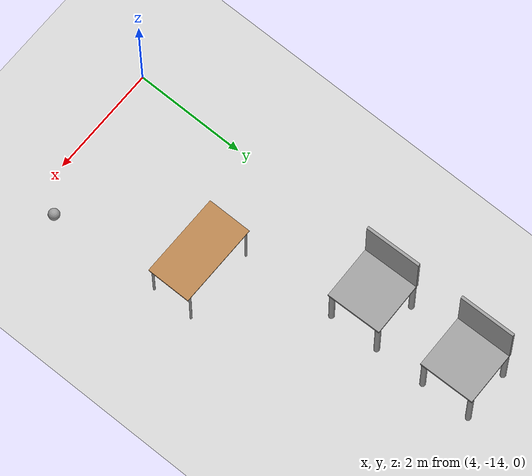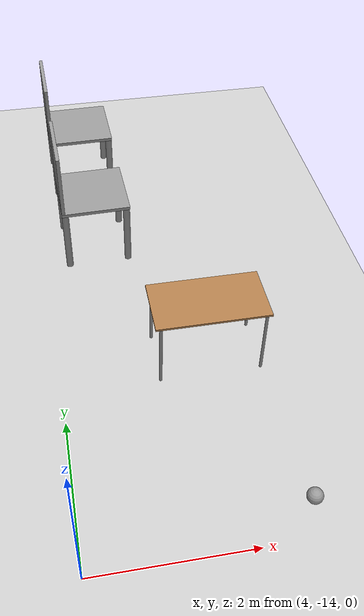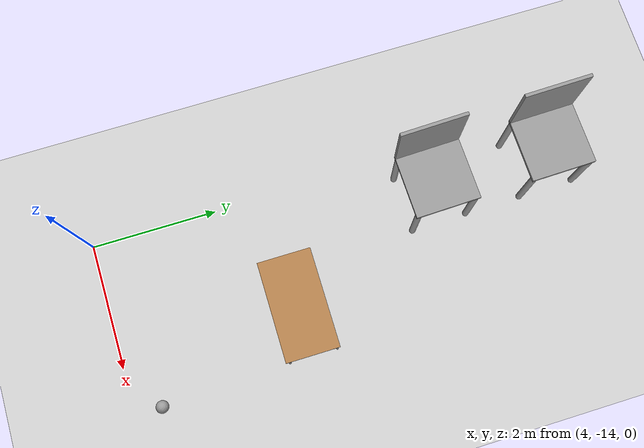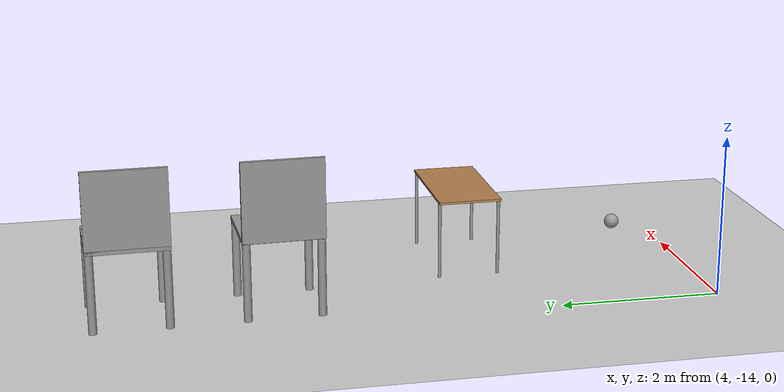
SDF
<sdf version="1.6">
 <world name="default">
  <model name="ground_plane">
   <static>1</static>
   <link name="link">
    <collision name="collision">
     <geometry><plane><normal>0 0 1</normal><size>100 100</size></plane></geometry>
     <surface>
      <contact><collide_bitmask>65535</collide_bitmask></contact>
      <friction><ode><mu>100</mu><mu2>50</mu2></ode></friction>
     </surface>
    </collision>
    <visual name="visual">
     <cast_shadows>0</cast_shadows>
     <geometry><plane><normal>0 0 1</normal><size>100 100</size></plane></geometry>
     <material>
      <script><uri>file://media/materials/scripts/gazebo.material</uri><name>Gazebo/Grey</name></script>
     </material>
    </visual>
   </link>
  </model>
  <model name="table_0">
   <static>1</static>
   <link name="link">
    <collision name="surface">
     <pose>0 0 1 0 -0 0</pose>
     <geometry><box><size>1.5 0.8 0.03</size></box></geometry>
     <surface><friction><ode><mu>0.6</mu><mu2>0.6</mu2></ode></friction></surface>
    </collision>
    <visual name="visual1">
     <pose>0 0 1 0 -0 0</pose>
     <geometry><box><size>1.5 0.8 0.03</size></box></geometry>
     <material>
      <script><uri>file://media/materials/scripts/gazebo.material</uri><name>Gazebo/Wood</name></script>
     </material>
    </visual>
    <collision name="front_left_leg">
     <pose>0.68 0.38 0.5 0 -0 0</pose>
     <geometry><cylinder><radius>0.02</radius><length>1</length></cylinder></geometry>
    </collision>
    <visual name="front_left_leg">
     <pose>0.68 0.38 0.5 0 -0 0</pose>
     <geometry><cylinder><radius>0.02</radius><length>1</length></cylinder></geometry>
     <material>
      <script><uri>file://media/materials/scripts/gazebo.material</uri><name>Gazebo/Grey</name></script>
     </material>
    </visual>
    <collision name="front_right_leg">
     <pose>0.68 -0.38 0.5 0 -0 0</pose>
     <geometry><cylinder><radius>0.02</radius><length>1</length></cylinder></geometry>
    </collision>
    <visual name="front_right_leg">
     <pose>0.68 -0.38 0.5 0 -0 0</pose>
     <geometry><cylinder><radius>0.02</radius><length>1</length></cylinder></geometry>
     <material>
      <script><uri>file://media/materials/scripts/gazebo.material</uri><name>Gazebo/Grey</name></script>
     </material>
    </visual>
    <collision name="back_right_leg">
     <pose>-0.68 -0.38 0.5 0 -0 0</pose>
     <geometry><cylinder><radius>0.02</radius><length>1</length></cylinder></geometry>
    </collision>
    <visual name="back_right_leg">
     <pose>-0.68 -0.38 0.5 0 -0 0</pose>
     <geometry><cylinder><radius>0.02</radius><length>1</length></cylinder></geometry>
     <material>
      <script><uri>file://media/materials/scripts/gazebo.material</uri><name>Gazebo/Grey</name></script>
     </material>
    </visual>
    <collision name="back_left_leg">
     <pose>-0.68 0.38 0.5 0 -0 0</pose>
     <geometry><cylinder><radius>0.02</radius><length>1</length></cylinder></geometry>
    </collision>
    <visual name="back_left_leg">
     <pose>-0.68 0.38 0.5 0 -0 0</pose>
     <geometry><cylinder><radius>0.02</radius><length>1</length></cylinder></geometry>
     <material>
      <script><uri>file://media/materials/scripts/gazebo.material</uri><name>Gazebo/Grey</name></script>
     </material>
    </visual>
   </link>
   <pose>5.97613 -11.1432 0 0 -0 0</pose>
  </model>
  <model name="my_Chair">
   <link name="link_0">
    <pose>-0.45 -0.370833 -0.245833 0 -0 0</pose>
    <inertial>
     <mass>1</mass>
     <inertia><ixx>0.145833</ixx><ixy>0</ixy><ixz>0</ixz><iyy>0.145833</iyy><iyz>0</iyz><izz>0.125</izz></inertia>
    </inertial>
    <visual name="visual">
     <geometry><cylinder><radius>0.05</radius><length>1</length></cylinder></geometry>
     <material>
      <lighting>1</lighting>
      <script><uri>file://media/materials/scripts/gazebo.material</uri><name>Gazebo/Grey</name></script>
      <ambient>0.3 0.3 0.3 1</ambient>
      <diffuse>0.7 0.7 0.7 1</diffuse>
      <specular>0.01 0.01 0.01 1</specular>
      <emissive>0 0 0 1</emissive>
      <shader type="vertex"><normal_map>__default__</normal_map></shader>
     </material>
    </visual>
    <collision name="collision">
     <geometry><cylinder><radius>0.05</radius><length>1</length></cylinder></geometry>
     <surface>
      <friction>
       <ode><mu>1</mu><mu2>1</mu2><fdir1>0 0 0</fdir1><slip1>0</slip1><slip2>0</slip2></ode>
       <torsional>
        <coefficient>1</coefficient>
        <patch_radius>0</patch_radius>
        <surface_radius>0</surface_radius>
        <use_patch_radius>1</use_patch_radius>
        <ode><slip>0</slip></ode>
       </torsional>
      </friction>
      <bounce><restitution_coefficient>0</restitution_coefficient><threshold>1e+06</threshold></bounce>
      <contact>
       <collide_without_contact>0</collide_without_contact>
       <collide_without_contact_bitmask>1</collide_without_contact_bitmask>
       <collide_bitmask>1</collide_bitmask>
       <ode>
        <soft_cfm>0</soft_cfm>
        <soft_erp>0.2</soft_erp>
        <kp>1e+13</kp>
        <kd>1</kd>
        <max_vel>0.01</max_vel>
        <min_depth>0</min_depth>
       </ode>
       <bullet>
        <split_impulse>1</split_impulse>
        <split_impulse_penetration_threshold>-0.01</split_impulse_penetration_threshold>
        <soft_cfm>0</soft_cfm>
        <soft_erp>0.2</soft_erp>
        <kp>1e+13</kp>
        <kd>1</kd>
       </bullet>
      </contact>
     </surface>
    </collision>
   </link>
   <link name="link_0_clone">
    <pose>0.45 -0.370833 -0.245833 0 -0 0</pose>
    <inertial>
     <mass>1</mass>
     <inertia><ixx>0.145833</ixx><ixy>0</ixy><ixz>0</ixz><iyy>0.145833</iyy><iyz>0</iyz><izz>0.125</izz></inertia>
    </inertial>
    <visual name="visual">
     <geometry><cylinder><radius>0.05</radius><length>1</length></cylinder></geometry>
     <material>
      <lighting>1</lighting>
      <script><uri>file://media/materials/scripts/gazebo.material</uri><name>Gazebo/Grey</name></script>
      <ambient>0.3 0.3 0.3 1</ambient>
      <diffuse>0.7 0.7 0.7 1</diffuse>
      <specular>0.01 0.01 0.01 1</specular>
      <emissive>0 0 0 1</emissive>
      <shader type="vertex"><normal_map>__default__</normal_map></shader>
     </material>
    </visual>
    <collision name="collision">
     <geometry><cylinder><radius>0.05</radius><length>1</length></cylinder></geometry>
     <surface>
      <friction>
       <ode><mu>1</mu><mu2>1</mu2><fdir1>0 0 0</fdir1><slip1>0</slip1><slip2>0</slip2></ode>
       <torsional>
        <coefficient>1</coefficient>
        <patch_radius>0</patch_radius>
        <surface_radius>0</surface_radius>
        <use_patch_radius>1</use_patch_radius>
        <ode><slip>0</slip></ode>
       </torsional>
      </friction>
      <bounce><restitution_coefficient>0</restitution_coefficient><threshold>1e+06</threshold></bounce>
      <contact>
       <collide_without_contact>0</collide_without_contact>
       <collide_without_contact_bitmask>1</collide_without_contact_bitmask>
       <collide_bitmask>1</collide_bitmask>
       <ode>
        <soft_cfm>0</soft_cfm>
        <soft_erp>0.2</soft_erp>
        <kp>1e+13</kp>
        <kd>1</kd>
        <max_vel>0.01</max_vel>
        <min_depth>0</min_depth>
       </ode>
       <bullet>
        <split_impulse>1</split_impulse>
        <split_impulse_penetration_threshold>-0.01</split_impulse_penetration_threshold>
        <soft_cfm>0</soft_cfm>
        <soft_erp>0.2</soft_erp>
        <kp>1e+13</kp>
        <kd>1</kd>
       </bullet>
      </contact>
     </surface>
    </collision>
   </link>
   <link name="link_0_clone_0">
    <pose>-0.45 0.529167 -0.245833 0 -0 0</pose>
    <inertial>
     <mass>1</mass>
     <inertia><ixx>0.145833</ixx><ixy>0</ixy><ixz>0</ixz><iyy>0.145833</iyy><iyz>0</iyz><izz>0.125</izz></inertia>
    </inertial>
    <visual name="visual">
     <geometry><cylinder><radius>0.05</radius><length>1</length></cylinder></geometry>
     <material>
      <lighting>1</lighting>
      <script><uri>file://media/materials/scripts/gazebo.material</uri><name>Gazebo/Grey</name></script>
      <ambient>0.3 0.3 0.3 1</ambient>
      <diffuse>0.7 0.7 0.7 1</diffuse>
      <specular>0.01 0.01 0.01 1</specular>
      <emissive>0 0 0 1</emissive>
      <shader type="vertex"><normal_map>__default__</normal_map></shader>
     </material>
    </visual>
    <collision name="collision">
     <geometry><cylinder><radius>0.05</radius><length>1</length></cylinder></geometry>
     <surface>
      <friction>
       <ode><mu>1</mu><mu2>1</mu2><fdir1>0 0 0</fdir1><slip1>0</slip1><slip2>0</slip2></ode>
       <torsional>
        <coefficient>1</coefficient>
        <patch_radius>0</patch_radius>
        <surface_radius>0</surface_radius>
        <use_patch_radius>1</use_patch_radius>
        <ode><slip>0</slip></ode>
       </torsional>
      </friction>
      <bounce><restitution_coefficient>0</restitution_coefficient><threshold>1e+06</threshold></bounce>
      <contact>
       <collide_without_contact>0</collide_without_contact>
       <collide_without_contact_bitmask>1</collide_without_contact_bitmask>
       <collide_bitmask>1</collide_bitmask>
       <ode>
        <soft_cfm>0</soft_cfm>
        <soft_erp>0.2</soft_erp>
        <kp>1e+13</kp>
        <kd>1</kd>
        <max_vel>0.01</max_vel>
        <min_depth>0</min_depth>
       </ode>
       <bullet>
        <split_impulse>1</split_impulse>
        <split_impulse_penetration_threshold>-0.01</split_impulse_penetration_threshold>
        <soft_cfm>0</soft_cfm>
        <soft_erp>0.2</soft_erp>
        <kp>1e+13</kp>
        <kd>1</kd>
       </bullet>
      </contact>
     </surface>
    </collision>
   </link>
   <link name="link_0_clone_0_clone">
    <pose>0.45 0.529167 -0.245833 0 -0 0</pose>
    <inertial>
     <mass>1</mass>
     <inertia><ixx>0.145833</ixx><ixy>0</ixy><ixz>0</ixz><iyy>0.145833</iyy><iyz>0</iyz><izz>0.125</izz></inertia>
    </inertial>
    <visual name="visual">
     <geometry><cylinder><radius>0.05</radius><length>1</length></cylinder></geometry>
     <material>
      <lighting>1</lighting>
      <script><uri>file://media/materials/scripts/gazebo.material</uri><name>Gazebo/Grey</name></script>
      <ambient>0.3 0.3 0.3 1</ambient>
      <diffuse>0.7 0.7 0.7 1</diffuse>
      <specular>0.01 0.01 0.01 1</specular>
      <emissive>0 0 0 1</emissive>
      <shader type="vertex"><normal_map>__default__</normal_map></shader>
     </material>
    </visual>
    <collision name="collision">
     <geometry><cylinder><radius>0.05</radius><length>1</length></cylinder></geometry>
     <surface>
      <friction>
       <ode><mu>1</mu><mu2>1</mu2><fdir1>0 0 0</fdir1><slip1>0</slip1><slip2>0</slip2></ode>
       <torsional>
        <coefficient>1</coefficient>
        <patch_radius>0</patch_radius>
        <surface_radius>0</surface_radius>
        <use_patch_radius>1</use_patch_radius>
        <ode><slip>0</slip></ode>
       </torsional>
      </friction>
      <bounce><restitution_coefficient>0</restitution_coefficient><threshold>1e+06</threshold></bounce>
      <contact>
       <collide_without_contact>0</collide_without_contact>
       <collide_without_contact_bitmask>1</collide_without_contact_bitmask>
       <collide_bitmask>1</collide_bitmask>
       <ode>
        <soft_cfm>0</soft_cfm>
        <soft_erp>0.2</soft_erp>
        <kp>1e+13</kp>
        <kd>1</kd>
        <max_vel>0.01</max_vel>
        <min_depth>0</min_depth>
       </ode>
       <bullet>
        <split_impulse>1</split_impulse>
        <split_impulse_penetration_threshold>-0.01</split_impulse_penetration_threshold>
        <soft_cfm>0</soft_cfm>
        <soft_erp>0.2</soft_erp>
        <kp>1e+13</kp>
        <kd>1</kd>
       </bullet>
      </contact>
     </surface>
    </collision>
   </link>
   <link name="link_1">
    <pose>-0 0.079167 0.254167 0 -0 0</pose>
    <inertial>
     <mass>1</mass>
     <inertia>
      <ixx>0.166667</ixx>
      <ixy>0</ixy>
      <ixz>0</ixz>
      <iyy>0.166667</iyy>
      <iyz>0</iyz>
      <izz>0.166667</izz>
     </inertia>
    </inertial>
    <visual name="visual">
     <geometry><box><size>1 1 0.05</size></box></geometry>
     <material>
      <lighting>1</lighting>
      <script><uri>file://media/materials/scripts/gazebo.material</uri><name>Gazebo/Grey</name></script>
      <ambient>0.3 0.3 0.3 1</ambient>
      <diffuse>0.7 0.7 0.7 1</diffuse>
      <specular>0.01 0.01 0.01 1</specular>
      <emissive>0 0 0 1</emissive>
      <shader type="vertex"><normal_map>__default__</normal_map></shader>
     </material>
    </visual>
    <collision name="collision">
     <geometry><box><size>1 1 0.05</size></box></geometry>
     <surface>
      <friction>
       <ode><mu>1</mu><mu2>1</mu2><fdir1>0 0 0</fdir1><slip1>0</slip1><slip2>0</slip2></ode>
       <torsional>
        <coefficient>1</coefficient>
        <patch_radius>0</patch_radius>
        <surface_radius>0</surface_radius>
        <use_patch_radius>1</use_patch_radius>
        <ode><slip>0</slip></ode>
       </torsional>
      </friction>
      <bounce><restitution_coefficient>0</restitution_coefficient><threshold>1e+06</threshold></bounce>
      <contact>
       <collide_without_contact>0</collide_without_contact>
       <collide_without_contact_bitmask>1</collide_without_contact_bitmask>
       <collide_bitmask>1</collide_bitmask>
       <ode>
        <soft_cfm>0</soft_cfm>
        <soft_erp>0.2</soft_erp>
        <kp>1e+13</kp>
        <kd>1</kd>
        <max_vel>0.01</max_vel>
        <min_depth>0</min_depth>
       </ode>
       <bullet>
        <split_impulse>1</split_impulse>
        <split_impulse_penetration_threshold>-0.01</split_impulse_penetration_threshold>
        <soft_cfm>0</soft_cfm>
        <soft_erp>0.2</soft_erp>
        <kp>1e+13</kp>
        <kd>1</kd>
       </bullet>
      </contact>
     </surface>
    </collision>
   </link>
   <link name="link_2">
    <pose>-0 -0.395833 0.729167 0 -0 0</pose>
    <inertial>
     <mass>1</mass>
     <inertia>
      <ixx>0.166667</ixx>
      <ixy>0</ixy>
      <ixz>0</ixz>
      <iyy>0.166667</iyy>
      <iyz>0</iyz>
      <izz>0.166667</izz>
     </inertia>
    </inertial>
    <visual name="visual">
     <geometry><box><size>1 0.05 1</size></box></geometry>
     <material>
      <lighting>1</lighting>
      <script><uri>file://media/materials/scripts/gazebo.material</uri><name>Gazebo/Grey</name></script>
      <ambient>0.3 0.3 0.3 1</ambient>
      <diffuse>0.7 0.7 0.7 1</diffuse>
      <specular>0.01 0.01 0.01 1</specular>
      <emissive>0 0 0 1</emissive>
      <shader type="vertex"><normal_map>__default__</normal_map></shader>
     </material>
    </visual>
    <collision name="collision">
     <geometry><box><size>1 0.05 1</size></box></geometry>
     <surface>
      <friction>
       <ode><mu>1</mu><mu2>1</mu2><fdir1>0 0 0</fdir1><slip1>0</slip1><slip2>0</slip2></ode>
       <torsional>
        <coefficient>1</coefficient>
        <patch_radius>0</patch_radius>
        <surface_radius>0</surface_radius>
        <use_patch_radius>1</use_patch_radius>
        <ode><slip>0</slip></ode>
       </torsional>
      </friction>
      <bounce><restitution_coefficient>0</restitution_coefficient><threshold>1e+06</threshold></bounce>
      <contact>
       <collide_without_contact>0</collide_without_contact>
       <collide_without_contact_bitmask>1</collide_without_contact_bitmask>
       <collide_bitmask>1</collide_bitmask>
       <ode>
        <soft_cfm>0</soft_cfm>
        <soft_erp>0.2</soft_erp>
        <kp>1e+13</kp>
        <kd>1</kd>
        <max_vel>0.01</max_vel>
        <min_depth>0</min_depth>
       </ode>
       <bullet>
        <split_impulse>1</split_impulse>
        <split_impulse_penetration_threshold>-0.01</split_impulse_penetration_threshold>
        <soft_cfm>0</soft_cfm>
        <soft_erp>0.2</soft_erp>
        <kp>1e+13</kp>
        <kd>1</kd>
       </bullet>
      </contact>
     </surface>
    </collision>
   </link>
   <joint name="link_1_JOINT_2" type="fixed">
    <parent>link_1</parent>
    <child>link_0_clone</child>
    <physics>
     <ode><limit><cfm>0</cfm><erp>0.2</erp></limit><suspension><cfm>0</cfm><erp>0.2</erp></suspension></ode>
    </physics>
   </joint>
   <joint name="link_1_JOINT_3" type="fixed">
    <parent>link_1</parent>
    <child>link_0</child>
    <physics>
     <ode><limit><cfm>0</cfm><erp>0.2</erp></limit><suspension><cfm>0</cfm><erp>0.2</erp></suspension></ode>
    </physics>
   </joint>
   <joint name="link_1_JOINT_4" type="fixed">
    <parent>link_1</parent>
    <child>link_0_clone_0_clone</child>
    <physics>
     <ode><limit><cfm>0</cfm><erp>0.2</erp></limit><suspension><cfm>0</cfm><erp>0.2</erp></suspension></ode>
    </physics>
   </joint>
   <joint name="link_1_JOINT_5" type="fixed">
    <parent>link_1</parent>
    <child>link_0_clone_0</child>
    <physics>
     <ode><limit><cfm>0</cfm><erp>0.2</erp></limit><suspension><cfm>0</cfm><erp>0.2</erp></suspension></ode>
    </physics>
   </joint>
   <joint name="link_1_JOINT_6" type="revolute">
    <parent>link_1</parent>
    <child>link_2</child>
    <axis>
     <xyz>1 0 0</xyz>
     <use_parent_model_frame>0</use_parent_model_frame>
     <limit>
      <lower>-1.79769e+308</lower>
      <upper>1.79769e+308</upper>
      <effort>-1</effort>
      <velocity>-1</velocity>
     </limit>
     <dynamics>
      <spring_reference>0</spring_reference>
      <spring_stiffness>0</spring_stiffness>
      <damping>0</damping>
     </dynamics>
    </axis>
    <physics>
     <ode><limit><cfm>0</cfm><erp>0.2</erp></limit><suspension><cfm>0</cfm><erp>0.2</erp></suspension></ode>
    </physics>
   </joint>
   <static>0</static>
   <pose>4.67864 -8.63878 0.745834 1e-06 -1e-06 -1.54627</pose>
  </model>
  <model name="my_Chair_0">
   <link name="link_0">
    <pose>-0.45 -0.370833 -0.245833 0 -0 0</pose>
    <inertial>
     <mass>1</mass>
     <inertia><ixx>0.145833</ixx><ixy>0</ixy><ixz>0</ixz><iyy>0.145833</iyy><iyz>0</iyz><izz>0.125</izz></inertia>
    </inertial>
    <visual name="visual">
     <geometry><cylinder><radius>0.05</radius><length>1</length></cylinder></geometry>
     <material>
      <lighting>1</lighting>
      <script><uri>file://media/materials/scripts/gazebo.material</uri><name>Gazebo/Grey</name></script>
      <ambient>0.3 0.3 0.3 1</ambient>
      <diffuse>0.7 0.7 0.7 1</diffuse>
      <specular>0.01 0.01 0.01 1</specular>
      <emissive>0 0 0 1</emissive>
      <shader type="vertex"><normal_map>__default__</normal_map></shader>
     </material>
    </visual>
    <collision name="collision">
     <geometry><cylinder><radius>0.05</radius><length>1</length></cylinder></geometry>
     <surface>
      <friction>
       <ode><mu>1</mu><mu2>1</mu2><fdir1>0 0 0</fdir1><slip1>0</slip1><slip2>0</slip2></ode>
       <torsional>
        <coefficient>1</coefficient>
        <patch_radius>0</patch_radius>
        <surface_radius>0</surface_radius>
        <use_patch_radius>1</use_patch_radius>
        <ode><slip>0</slip></ode>
       </torsional>
      </friction>
      <bounce><restitution_coefficient>0</restitution_coefficient><threshold>1e+06</threshold></bounce>
      <contact>
       <collide_without_contact>0</collide_without_contact>
       <collide_without_contact_bitmask>1</collide_without_contact_bitmask>
       <collide_bitmask>1</collide_bitmask>
       <ode>
        <soft_cfm>0</soft_cfm>
        <soft_erp>0.2</soft_erp>
        <kp>1e+13</kp>
        <kd>1</kd>
        <max_vel>0.01</max_vel>
        <min_depth>0</min_depth>
       </ode>
       <bullet>
        <split_impulse>1</split_impulse>
        <split_impulse_penetration_threshold>-0.01</split_impulse_penetration_threshold>
        <soft_cfm>0</soft_cfm>
        <soft_erp>0.2</soft_erp>
        <kp>1e+13</kp>
        <kd>1</kd>
       </bullet>
      </contact>
     </surface>
    </collision>
   </link>
   <link name="link_0_clone">
    <pose>0.45 -0.370833 -0.245833 0 -0 0</pose>
    <inertial>
     <mass>1</mass>
     <inertia><ixx>0.145833</ixx><ixy>0</ixy><ixz>0</ixz><iyy>0.145833</iyy><iyz>0</iyz><izz>0.125</izz></inertia>
    </inertial>
    <visual name="visual">
     <geometry><cylinder><radius>0.05</radius><length>1</length></cylinder></geometry>
     <material>
      <lighting>1</lighting>
      <script><uri>file://media/materials/scripts/gazebo.material</uri><name>Gazebo/Grey</name></script>
      <ambient>0.3 0.3 0.3 1</ambient>
      <diffuse>0.7 0.7 0.7 1</diffuse>
      <specular>0.01 0.01 0.01 1</specular>
      <emissive>0 0 0 1</emissive>
      <shader type="vertex"><normal_map>__default__</normal_map></shader>
     </material>
    </visual>
    <collision name="collision">
     <geometry><cylinder><radius>0.05</radius><length>1</length></cylinder></geometry>
     <surface>
      <friction>
       <ode><mu>1</mu><mu2>1</mu2><fdir1>0 0 0</fdir1><slip1>0</slip1><slip2>0</slip2></ode>
       <torsional>
        <coefficient>1</coefficient>
        <patch_radius>0</patch_radius>
        <surface_radius>0</surface_radius>
        <use_patch_radius>1</use_patch_radius>
        <ode><slip>0</slip></ode>
       </torsional>
      </friction>
      <bounce><restitution_coefficient>0</restitution_coefficient><threshold>1e+06</threshold></bounce>
      <contact>
       <collide_without_contact>0</collide_without_contact>
       <collide_without_contact_bitmask>1</collide_without_contact_bitmask>
       <collide_bitmask>1</collide_bitmask>
       <ode>
        <soft_cfm>0</soft_cfm>
        <soft_erp>0.2</soft_erp>
        <kp>1e+13</kp>
        <kd>1</kd>
        <max_vel>0.01</max_vel>
        <min_depth>0</min_depth>
       </ode>
       <bullet>
        <split_impulse>1</split_impulse>
        <split_impulse_penetration_threshold>-0.01</split_impulse_penetration_threshold>
        <soft_cfm>0</soft_cfm>
        <soft_erp>0.2</soft_erp>
        <kp>1e+13</kp>
        <kd>1</kd>
       </bullet>
      </contact>
     </surface>
    </collision>
   </link>
   <link name="link_0_clone_0">
    <pose>-0.45 0.529167 -0.245833 0 -0 0</pose>
    <inertial>
     <mass>1</mass>
     <inertia><ixx>0.145833</ixx><ixy>0</ixy><ixz>0</ixz><iyy>0.145833</iyy><iyz>0</iyz><izz>0.125</izz></inertia>
    </inertial>
    <visual name="visual">
     <geometry><cylinder><radius>0.05</radius><length>1</length></cylinder></geometry>
     <material>
      <lighting>1</lighting>
      <script><uri>file://media/materials/scripts/gazebo.material</uri><name>Gazebo/Grey</name></script>
      <ambient>0.3 0.3 0.3 1</ambient>
      <diffuse>0.7 0.7 0.7 1</diffuse>
      <specular>0.01 0.01 0.01 1</specular>
      <emissive>0 0 0 1</emissive>
      <shader type="vertex"><normal_map>__default__</normal_map></shader>
     </material>
    </visual>
    <collision name="collision">
     <geometry><cylinder><radius>0.05</radius><length>1</length></cylinder></geometry>
     <surface>
      <friction>
       <ode><mu>1</mu><mu2>1</mu2><fdir1>0 0 0</fdir1><slip1>0</slip1><slip2>0</slip2></ode>
       <torsional>
        <coefficient>1</coefficient>
        <patch_radius>0</patch_radius>
        <surface_radius>0</surface_radius>
        <use_patch_radius>1</use_patch_radius>
        <ode><slip>0</slip></ode>
       </torsional>
      </friction>
      <bounce><restitution_coefficient>0</restitution_coefficient><threshold>1e+06</threshold></bounce>
      <contact>
       <collide_without_contact>0</collide_without_contact>
       <collide_without_contact_bitmask>1</collide_without_contact_bitmask>
       <collide_bitmask>1</collide_bitmask>
       <ode>
        <soft_cfm>0</soft_cfm>
        <soft_erp>0.2</soft_erp>
        <kp>1e+13</kp>
        <kd>1</kd>
        <max_vel>0.01</max_vel>
        <min_depth>0</min_depth>
       </ode>
       <bullet>
        <split_impulse>1</split_impulse>
        <split_impulse_penetration_threshold>-0.01</split_impulse_penetration_threshold>
        <soft_cfm>0</soft_cfm>
        <soft_erp>0.2</soft_erp>
        <kp>1e+13</kp>
        <kd>1</kd>
       </bullet>
      </contact>
     </surface>
    </collision>
   </link>
   <link name="link_0_clone_0_clone">
    <pose>0.45 0.529167 -0.245833 0 -0 0</pose>
    <inertial>
     <mass>1</mass>
     <inertia><ixx>0.145833</ixx><ixy>0</ixy><ixz>0</ixz><iyy>0.145833</iyy><iyz>0</iyz><izz>0.125</izz></inertia>
    </inertial>
    <visual name="visual">
     <geometry><cylinder><radius>0.05</radius><length>1</length></cylinder></geometry>
     <material>
      <lighting>1</lighting>
      <script><uri>file://media/materials/scripts/gazebo.material</uri><name>Gazebo/Grey</name></script>
      <ambient>0.3 0.3 0.3 1</ambient>
      <diffuse>0.7 0.7 0.7 1</diffuse>
      <specular>0.01 0.01 0.01 1</specular>
      <emissive>0 0 0 1</emissive>
      <shader type="vertex"><normal_map>__default__</normal_map></shader>
     </material>
    </visual>
    <collision name="collision">
     <geometry><cylinder><radius>0.05</radius><length>1</length></cylinder></geometry>
     <surface>
      <friction>
       <ode><mu>1</mu><mu2>1</mu2><fdir1>0 0 0</fdir1><slip1>0</slip1><slip2>0</slip2></ode>
       <torsional>
        <coefficient>1</coefficient>
        <patch_radius>0</patch_radius>
        <surface_radius>0</surface_radius>
        <use_patch_radius>1</use_patch_radius>
        <ode><slip>0</slip></ode>
       </torsional>
      </friction>
      <bounce><restitution_coefficient>0</restitution_coefficient><threshold>1e+06</threshold></bounce>
      <contact>
       <collide_without_contact>0</collide_without_contact>
       <collide_without_contact_bitmask>1</collide_without_contact_bitmask>
       <collide_bitmask>1</collide_bitmask>
       <ode>
        <soft_cfm>0</soft_cfm>
        <soft_erp>0.2</soft_erp>
        <kp>1e+13</kp>
        <kd>1</kd>
        <max_vel>0.01</max_vel>
        <min_depth>0</min_depth>
       </ode>
       <bullet>
        <split_impulse>1</split_impulse>
        <split_impulse_penetration_threshold>-0.01</split_impulse_penetration_threshold>
        <soft_cfm>0</soft_cfm>
        <soft_erp>0.2</soft_erp>
        <kp>1e+13</kp>
        <kd>1</kd>
       </bullet>
      </contact>
     </surface>
    </collision>
   </link>
   <link name="link_1">
    <pose>-0 0.079167 0.254167 0 -0 0</pose>
    <inertial>
     <mass>1</mass>
     <inertia>
      <ixx>0.166667</ixx>
      <ixy>0</ixy>
      <ixz>0</ixz>
      <iyy>0.166667</iyy>
      <iyz>0</iyz>
      <izz>0.166667</izz>
     </inertia>
    </inertial>
    <visual name="visual">
     <geometry><box><size>1 1 0.05</size></box></geometry>
     <material>
      <lighting>1</lighting>
      <script><uri>file://media/materials/scripts/gazebo.material</uri><name>Gazebo/Grey</name></script>
      <ambient>0.3 0.3 0.3 1</ambient>
      <diffuse>0.7 0.7 0.7 1</diffuse>
      <specular>0.01 0.01 0.01 1</specular>
      <emissive>0 0 0 1</emissive>
      <shader type="vertex"><normal_map>__default__</normal_map></shader>
     </material>
    </visual>
    <collision name="collision">
     <geometry><box><size>1 1 0.05</size></box></geometry>
     <surface>
      <friction>
       <ode><mu>1</mu><mu2>1</mu2><fdir1>0 0 0</fdir1><slip1>0</slip1><slip2>0</slip2></ode>
       <torsional>
        <coefficient>1</coefficient>
        <patch_radius>0</patch_radius>
        <surface_radius>0</surface_radius>
        <use_patch_radius>1</use_patch_radius>
        <ode><slip>0</slip></ode>
       </torsional>
      </friction>
      <bounce><restitution_coefficient>0</restitution_coefficient><threshold>1e+06</threshold></bounce>
      <contact>
       <collide_without_contact>0</collide_without_contact>
       <collide_without_contact_bitmask>1</collide_without_contact_bitmask>
       <collide_bitmask>1</collide_bitmask>
       <ode>
        <soft_cfm>0</soft_cfm>
        <soft_erp>0.2</soft_erp>
        <kp>1e+13</kp>
        <kd>1</kd>
        <max_vel>0.01</max_vel>
        <min_depth>0</min_depth>
       </ode>
       <bullet>
        <split_impulse>1</split_impulse>
        <split_impulse_penetration_threshold>-0.01</split_impulse_penetration_threshold>
        <soft_cfm>0</soft_cfm>
        <soft_erp>0.2</soft_erp>
        <kp>1e+13</kp>
        <kd>1</kd>
       </bullet>
      </contact>
     </surface>
    </collision>
   </link>
   <link name="link_2">
    <pose>-0 -0.395833 0.729167 0 -0 0</pose>
    <inertial>
     <mass>1</mass>
     <inertia>
      <ixx>0.166667</ixx>
      <ixy>0</ixy>
      <ixz>0</ixz>
      <iyy>0.166667</iyy>
      <iyz>0</iyz>
      <izz>0.166667</izz>
     </inertia>
    </inertial>
    <visual name="visual">
     <geometry><box><size>1 0.05 1</size></box></geometry>
     <material>
      <lighting>1</lighting>
      <script><uri>file://media/materials/scripts/gazebo.material</uri><name>Gazebo/Grey</name></script>
      <ambient>0.3 0.3 0.3 1</ambient>
      <diffuse>0.7 0.7 0.7 1</diffuse>
      <specular>0.01 0.01 0.01 1</specular>
      <emissive>0 0 0 1</emissive>
      <shader type="vertex"><normal_map>__default__</normal_map></shader>
     </material>
    </visual>
    <collision name="collision">
     <geometry><box><size>1 0.05 1</size></box></geometry>
     <surface>
      <friction>
       <ode><mu>1</mu><mu2>1</mu2><fdir1>0 0 0</fdir1><slip1>0</slip1><slip2>0</slip2></ode>
       <torsional>
        <coefficient>1</coefficient>
        <patch_radius>0</patch_radius>
        <surface_radius>0</surface_radius>
        <use_patch_radius>1</use_patch_radius>
        <ode><slip>0</slip></ode>
       </torsional>
      </friction>
      <bounce><restitution_coefficient>0</restitution_coefficient><threshold>1e+06</threshold></bounce>
      <contact>
       <collide_without_contact>0</collide_without_contact>
       <collide_without_contact_bitmask>1</collide_without_contact_bitmask>
       <collide_bitmask>1</collide_bitmask>
       <ode>
        <soft_cfm>0</soft_cfm>
        <soft_erp>0.2</soft_erp>
        <kp>1e+13</kp>
        <kd>1</kd>
        <max_vel>0.01</max_vel>
        <min_depth>0</min_depth>
       </ode>
       <bullet>
        <split_impulse>1</split_impulse>
        <split_impulse_penetration_threshold>-0.01</split_impulse_penetration_threshold>
        <soft_cfm>0</soft_cfm>
        <soft_erp>0.2</soft_erp>
        <kp>1e+13</kp>
        <kd>1</kd>
       </bullet>
      </contact>
     </surface>
    </collision>
   </link>
   <joint name="link_1_JOINT_2" type="fixed">
    <parent>link_1</parent>
    <child>link_0_clone</child>
    <physics>
     <ode><limit><cfm>0</cfm><erp>0.2</erp></limit><suspension><cfm>0</cfm><erp>0.2</erp></suspension></ode>
    </physics>
   </joint>
   <joint name="link_1_JOINT_3" type="fixed">
    <parent>link_1</parent>
    <child>link_0</child>
    <physics>
     <ode><limit><cfm>0</cfm><erp>0.2</erp></limit><suspension><cfm>0</cfm><erp>0.2</erp></suspension></ode>
    </physics>
   </joint>
   <joint name="link_1_JOINT_4" type="fixed">
    <parent>link_1</parent>
    <child>link_0_clone_0_clone</child>
    <physics>
     <ode><limit><cfm>0</cfm><erp>0.2</erp></limit><suspension><cfm>0</cfm><erp>0.2</erp></suspension></ode>
    </physics>
   </joint>
   <joint name="link_1_JOINT_5" type="fixed">
    <parent>link_1</parent>
    <child>link_0_clone_0</child>
    <physics>
     <ode><limit><cfm>0</cfm><erp>0.2</erp></limit><suspension><cfm>0</cfm><erp>0.2</erp></suspension></ode>
    </physics>
   </joint>
   <joint name="link_1_JOINT_6" type="revolute">
    <parent>link_1</parent>
    <child>link_2</child>
    <axis>
     <xyz>1 0 0</xyz>
     <use_parent_model_frame>0</use_parent_model_frame>
     <limit>
      <lower>-1.79769e+308</lower>
      <upper>1.79769e+308</upper>
      <effort>-1</effort>
      <velocity>-1</velocity>
     </limit>
     <dynamics>
      <spring_reference>0</spring_reference>
      <spring_stiffness>0</spring_stiffness>
      <damping>0</damping>
     </dynamics>
    </axis>
    <physics>
     <ode><limit><cfm>0</cfm><erp>0.2</erp></limit><suspension><cfm>0</cfm><erp>0.2</erp></suspension></ode>
    </physics>
   </joint>
   <static>0</static>
   <pose>4.647 -6.82084 0.745833 1e-06 -0 -1.55231</pose>
  </model>
  <model name="my_ball">
   <link name="link_0">
    <pose>-0.107107 -1.90923 0.5 0 -0 0</pose>
    <inertial>
     <mass>1</mass>
     <inertia><ixx>0.1</ixx><ixy>0</ixy><ixz>0</ixz><iyy>0.1</iyy><iyz>0</iyz><izz>0.1</izz></inertia>
    </inertial>
    <visual name="visual">
     <geometry><sphere><radius>0.1</radius></sphere></geometry>
     <material>
      <lighting>1</lighting>
      <script><uri>file://media/materials/scripts/gazebo.material</uri><name>Gazebo/Grey</name></script>
      <ambient>1 1 1 1</ambient>
      <diffuse>1 1 1 1</diffuse>
      <specular>1 1 1 1</specular>
      <emissive>1 1 1 1</emissive>
      <shader type="vertex"><normal_map>__default__</normal_map></shader>
     </material>
    </visual>
    <collision name="collision">
     <geometry><sphere><radius>0.1</radius></sphere></geometry>
     <surface>
      <friction>
       <ode><mu>1</mu><mu2>1</mu2><fdir1>0 0 0</fdir1><slip1>0</slip1><slip2>0</slip2></ode>
       <torsional>
        <coefficient>1</coefficient>
        <patch_radius>0</patch_radius>
        <surface_radius>0</surface_radius>
        <use_patch_radius>1</use_patch_radius>
        <ode><slip>0</slip></ode>
       </torsional>
      </friction>
      <bounce><restitution_coefficient>0</restitution_coefficient><threshold>1e+06</threshold></bounce>
      <contact>
       <collide_without_contact>0</collide_without_contact>
       <collide_without_contact_bitmask>1</collide_without_contact_bitmask>
       <collide_bitmask>1</collide_bitmask>
       <ode>
        <soft_cfm>0</soft_cfm>
        <soft_erp>0.2</soft_erp>
        <kp>1e+13</kp>
        <kd>1</kd>
        <max_vel>0.01</max_vel>
        <min_depth>0</min_depth>
       </ode>
       <bullet>
        <split_impulse>1</split_impulse>
        <split_impulse_penetration_threshold>-0.01</split_impulse_penetration_threshold>
        <soft_cfm>0</soft_cfm>
        <soft_erp>0.2</soft_erp>
        <kp>1e+13</kp>
        <kd>1</kd>
       </bullet>
      </contact>
     </surface>
    </collision>
   </link>
   <static>0</static>
   <pose>6.8386 -11.6352 -0.4 0 -0 0</pose>
  </model>
 </world>
</sdf>
